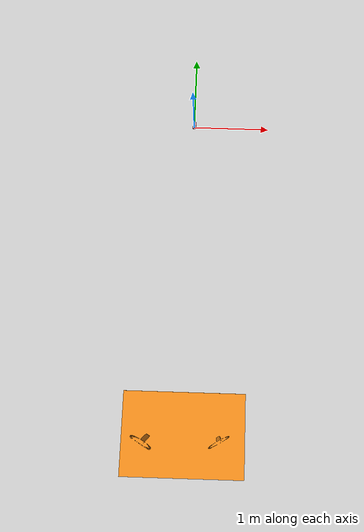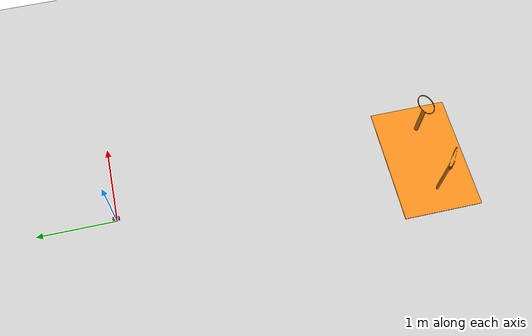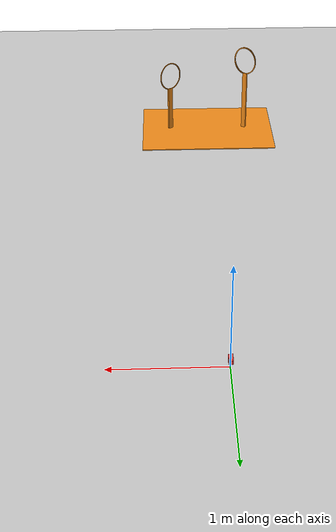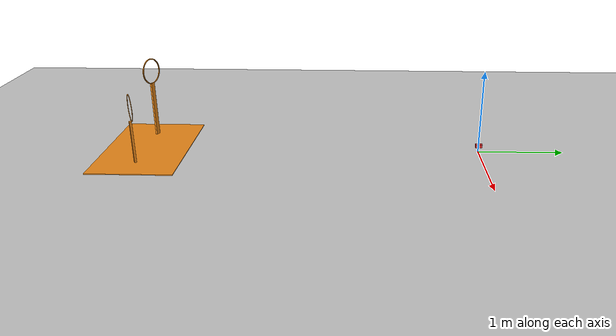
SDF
<?xml version="1.0" ?>
<sdf version="1.4">

  <world name="default">
    <include>
      <uri>model://ground_plane</uri>
    </include>

    <!-- Global light source -->
    <include>
      <uri>model://sun</uri>
    </include>

    <include>
      <uri>model://ball</uri>
      <static>false</static>
      <pose>0 0 0.08 0 0 0</pose>
    </include>

    <include>
      <uri>model://arena</uri>
      <static>false</static>
      <pose>0 -4 0 1.57 0 3.1415</pose>
    </include>

  </world>
</sdf>

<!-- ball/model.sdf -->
<sdf version="1.5">
  <model name="ball">
    <pose>0 0 0 0 0 0</pose>
    <static>false</static>
    <link name="link">
      <inertial>
        <mass>0.05</mass>
          <inertia>
            <ixx>3.33e-05</ixx>
            <ixy>0</ixy>
            <ixz>0</ixz>
            <iyy>1.33e-05</iyy>
            <iyz>0</iyz>
            <izz>1.33e-05</izz>
          </inertia>
      </inertial>
      <collision name="collision">
        <geometry>
            <box>
              <size>0.04 0.08 0.04</size>
            </box>
        </geometry>
      </collision>
      <visual name="visual">
        <geometry>
          <box>
            <size>0.04 0.08 0.04</size>
          </box>
        </geometry>
        <material>
          <script>
            <uri>file://media/materials/scripts/gazebo.material</uri>
            <name>Gazebo/Red</name>
          </script>
        </material>
      </visual>
    </link>
  </model>
</sdf>

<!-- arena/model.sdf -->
<sdf version="1.5">
  <model name="arena">
    <pose>0 0 0 0 0 0</pose>
    <static>false</static>
    <link name="link">
      <inertial>
        <mass>16.601</mass>
      </inertial>
      <collision name="collision">
        <geometry>
          <mesh>
            <uri>model://arena/meshes/arena.STL</uri>
            <scale>1 1 1</scale>
          </mesh>
        </geometry>
      </collision>
      <visual name="visual">
        <geometry>
          <mesh>
            <uri>model://arena/meshes/arena.STL</uri>
            <scale>1 1 1</scale>
          </mesh>
        </geometry>
        <material>
          <script>
            <uri>file://media/materials/scripts/gazebo.material</uri>
            <name>Gazebo/Orange</name>
          </script>
        </material>
      </visual>
    </link>
  </model>
</sdf>
